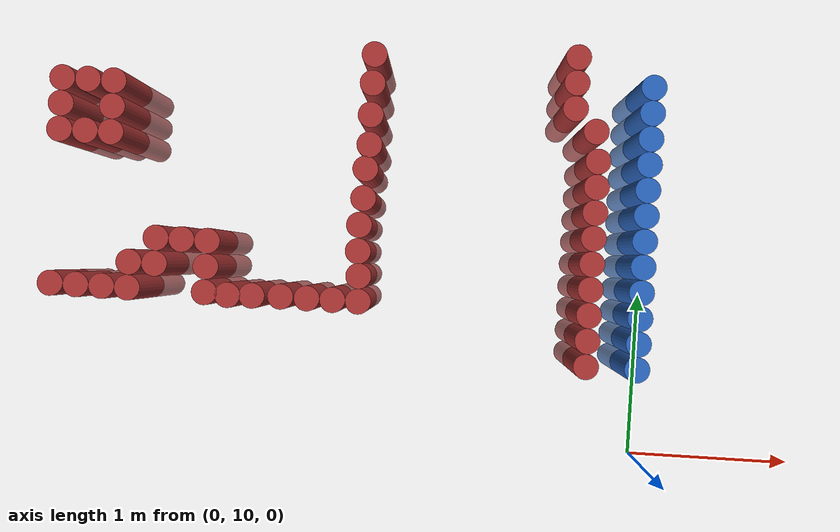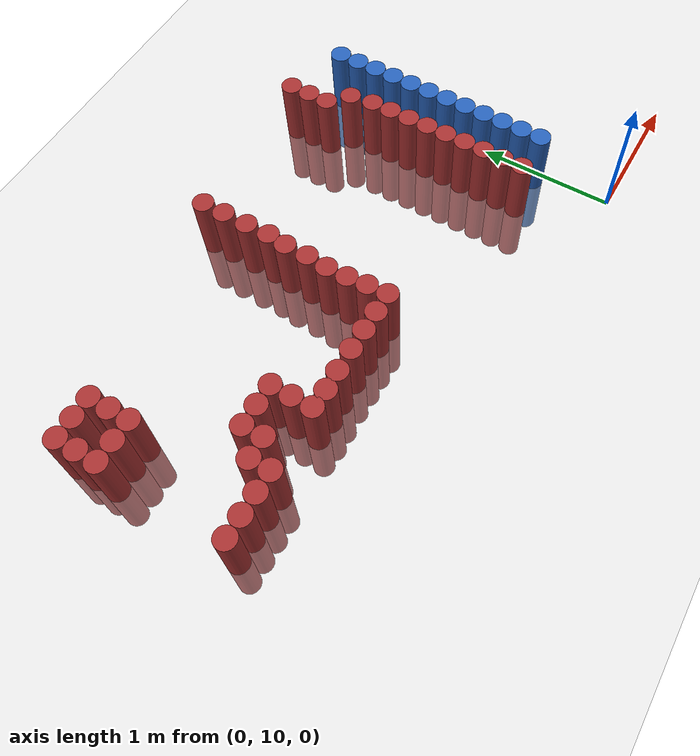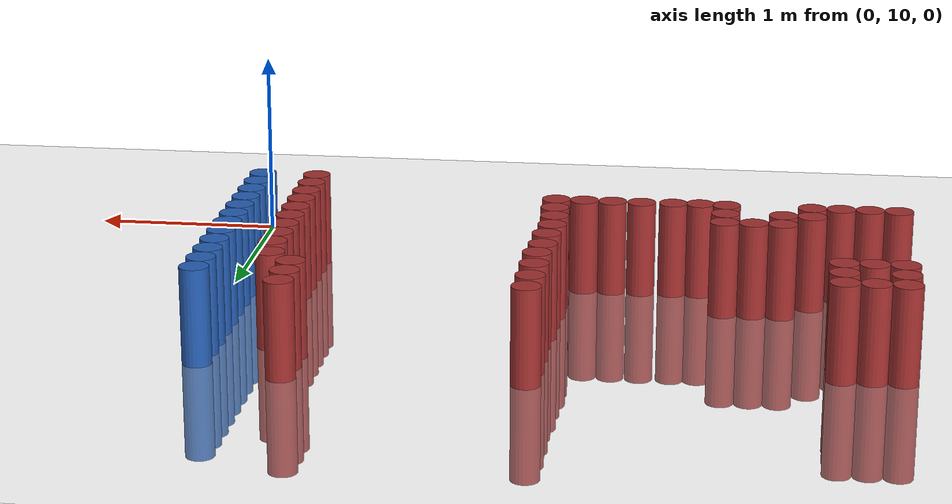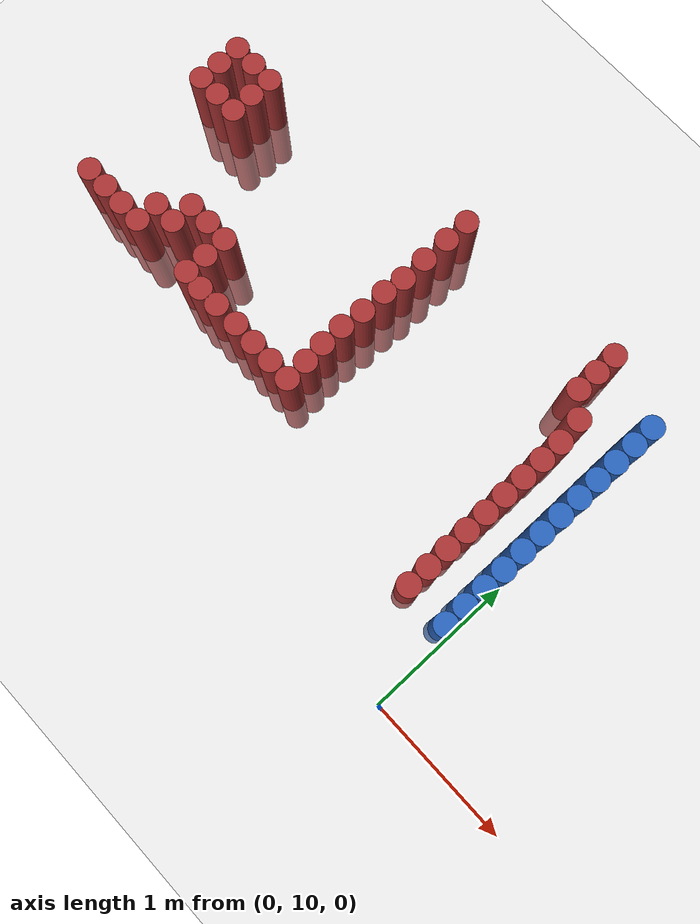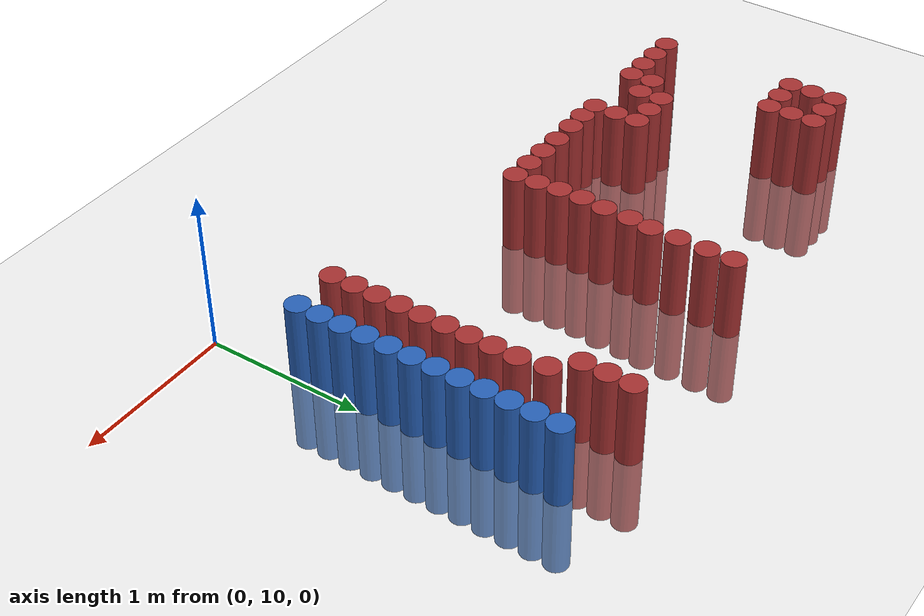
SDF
<sdf version="1.6">
 <world name="default">
  <model name="ground_plane">
   <static>1</static>
   <link name="link">
    <collision name="collision">
     <geometry><plane><normal>0 0 1</normal><size>100 100</size></plane></geometry>
     <surface><friction><ode><mu>100</mu><mu2>50</mu2></ode></friction></surface>
    </collision>
    <visual name="visual">
     <cast_shadows>0</cast_shadows>
     <geometry><plane><normal>0 0 1</normal><size>100 100</size></plane></geometry>
     <material>
      <script><uri>file://media/materials/scripts/gazebo.material</uri><name>Gazebo/Grey</name></script>
     </material>
    </visual>
   </link>
  </model>
  <model name="unit_cylinder_1190">
   <static>1</static>
   <pose>-3.525 10.875 0 0 -0 0</pose>
   <link name="link">
    <inertial>
     <mass>1</mass>
     <inertia><ixx>0.145833</ixx><ixy>0</ixy><ixz>0</ixz><iyy>0.145833</iyy><iyz>0</iyz><izz>0.125</izz></inertia>
    </inertial>
    <collision name="collision">
     <geometry><cylinder><radius>0.075</radius><length>1</length></cylinder></geometry>
    </collision>
    <visual name="visual">
     <geometry><cylinder><radius>0.075</radius><length>1</length></cylinder></geometry>
     <material><ambient>0.648 0.192 0.192 1</ambient><diffuse>0.648 0.192 0.192 1</diffuse></material>
     <material>
      <script><name>Gazebo/Grey</name><uri>file://media/materials/scripts/gazebo.material</uri></script>
     </material>
    </visual>
   </link>
  </model>
  <model name="unit_cylinder_1191">
   <static>1</static>
   <pose>-3.525 11.775 0 0 -0 0</pose>
   <link name="link">
    <inertial>
     <mass>1</mass>
     <inertia><ixx>0.145833</ixx><ixy>0</ixy><ixz>0</ixz><iyy>0.145833</iyy><iyz>0</iyz><izz>0.125</izz></inertia>
    </inertial>
    <collision name="collision">
     <geometry><cylinder><radius>0.075</radius><length>1</length></cylinder></geometry>
    </collision>
    <visual name="visual">
     <geometry><cylinder><radius>0.075</radius><length>1</length></cylinder></geometry>
     <material><ambient>0.648 0.192 0.192 1</ambient><diffuse>0.648 0.192 0.192 1</diffuse></material>
     <material>
      <script><name>Gazebo/Grey</name><uri>file://media/materials/scripts/gazebo.material</uri></script>
     </material>
    </visual>
   </link>
  </model>
  <model name="unit_cylinder_1192">
   <static>1</static>
   <pose>-3.525 11.925 0 0 -0 0</pose>
   <link name="link">
    <inertial>
     <mass>1</mass>
     <inertia><ixx>0.145833</ixx><ixy>0</ixy><ixz>0</ixz><iyy>0.145833</iyy><iyz>0</iyz><izz>0.125</izz></inertia>
    </inertial>
    <collision name="collision">
     <geometry><cylinder><radius>0.075</radius><length>1</length></cylinder></geometry>
    </collision>
    <visual name="visual">
     <geometry><cylinder><radius>0.075</radius><length>1</length></cylinder></geometry>
     <material><ambient>0.648 0.192 0.192 1</ambient><diffuse>0.648 0.192 0.192 1</diffuse></material>
     <material>
      <script><name>Gazebo/Grey</name><uri>file://media/materials/scripts/gazebo.material</uri></script>
     </material>
    </visual>
   </link>
  </model>
  <model name="unit_cylinder_1193">
   <static>1</static>
   <pose>-3.525 12.075 0 0 -0 0</pose>
   <link name="link">
    <inertial>
     <mass>1</mass>
     <inertia><ixx>0.145833</ixx><ixy>0</ixy><ixz>0</ixz><iyy>0.145833</iyy><iyz>0</iyz><izz>0.125</izz></inertia>
    </inertial>
    <collision name="collision">
     <geometry><cylinder><radius>0.075</radius><length>1</length></cylinder></geometry>
    </collision>
    <visual name="visual">
     <geometry><cylinder><radius>0.075</radius><length>1</length></cylinder></geometry>
     <material><ambient>0.648 0.192 0.192 1</ambient><diffuse>0.648 0.192 0.192 1</diffuse></material>
     <material>
      <script><name>Gazebo/Grey</name><uri>file://media/materials/scripts/gazebo.material</uri></script>
     </material>
    </visual>
   </link>
  </model>
  <model name="unit_cylinder_1217">
   <static>1</static>
   <pose>-3.375 10.875 0 0 -0 0</pose>
   <link name="link">
    <inertial>
     <mass>1</mass>
     <inertia><ixx>0.145833</ixx><ixy>0</ixy><ixz>0</ixz><iyy>0.145833</iyy><iyz>0</iyz><izz>0.125</izz></inertia>
    </inertial>
    <collision name="collision">
     <geometry><cylinder><radius>0.075</radius><length>1</length></cylinder></geometry>
    </collision>
    <visual name="visual">
     <geometry><cylinder><radius>0.075</radius><length>1</length></cylinder></geometry>
     <material><ambient>0.648 0.192 0.192 1</ambient><diffuse>0.648 0.192 0.192 1</diffuse></material>
     <material>
      <script><name>Gazebo/Grey</name><uri>file://media/materials/scripts/gazebo.material</uri></script>
     </material>
    </visual>
   </link>
  </model>
  <model name="unit_cylinder_1218">
   <static>1</static>
   <pose>-3.375 11.775 0 0 -0 0</pose>
   <link name="link">
    <inertial>
     <mass>1</mass>
     <inertia><ixx>0.145833</ixx><ixy>0</ixy><ixz>0</ixz><iyy>0.145833</iyy><iyz>0</iyz><izz>0.125</izz></inertia>
    </inertial>
    <collision name="collision">
     <geometry><cylinder><radius>0.075</radius><length>1</length></cylinder></geometry>
    </collision>
    <visual name="visual">
     <geometry><cylinder><radius>0.075</radius><length>1</length></cylinder></geometry>
     <material><ambient>0.648 0.192 0.192 1</ambient><diffuse>0.648 0.192 0.192 1</diffuse></material>
     <material>
      <script><name>Gazebo/Grey</name><uri>file://media/materials/scripts/gazebo.material</uri></script>
     </material>
    </visual>
   </link>
  </model>
  <model name="unit_cylinder_1219">
   <static>1</static>
   <pose>-3.375 12.075 0 0 -0 0</pose>
   <link name="link">
    <inertial>
     <mass>1</mass>
     <inertia><ixx>0.145833</ixx><ixy>0</ixy><ixz>0</ixz><iyy>0.145833</iyy><iyz>0</iyz><izz>0.125</izz></inertia>
    </inertial>
    <collision name="collision">
     <geometry><cylinder><radius>0.075</radius><length>1</length></cylinder></geometry>
    </collision>
    <visual name="visual">
     <geometry><cylinder><radius>0.075</radius><length>1</length></cylinder></geometry>
     <material><ambient>0.648 0.192 0.192 1</ambient><diffuse>0.648 0.192 0.192 1</diffuse></material>
     <material>
      <script><name>Gazebo/Grey</name><uri>file://media/materials/scripts/gazebo.material</uri></script>
     </material>
    </visual>
   </link>
  </model>
  <model name="unit_cylinder_1234">
   <static>1</static>
   <pose>-3.225 10.875 0 0 -0 0</pose>
   <link name="link">
    <inertial>
     <mass>1</mass>
     <inertia><ixx>0.145833</ixx><ixy>0</ixy><ixz>0</ixz><iyy>0.145833</iyy><iyz>0</iyz><izz>0.125</izz></inertia>
    </inertial>
    <collision name="collision">
     <geometry><cylinder><radius>0.075</radius><length>1</length></cylinder></geometry>
    </collision>
    <visual name="visual">
     <geometry><cylinder><radius>0.075</radius><length>1</length></cylinder></geometry>
     <material><ambient>0.648 0.192 0.192 1</ambient><diffuse>0.648 0.192 0.192 1</diffuse></material>
     <material>
      <script><name>Gazebo/Grey</name><uri>file://media/materials/scripts/gazebo.material</uri></script>
     </material>
    </visual>
   </link>
  </model>
  <model name="unit_cylinder_1235">
   <static>1</static>
   <pose>-3.225 11.775 0 0 -0 0</pose>
   <link name="link">
    <inertial>
     <mass>1</mass>
     <inertia><ixx>0.145833</ixx><ixy>0</ixy><ixz>0</ixz><iyy>0.145833</iyy><iyz>0</iyz><izz>0.125</izz></inertia>
    </inertial>
    <collision name="collision">
     <geometry><cylinder><radius>0.075</radius><length>1</length></cylinder></geometry>
    </collision>
    <visual name="visual">
     <geometry><cylinder><radius>0.075</radius><length>1</length></cylinder></geometry>
     <material><ambient>0.648 0.192 0.192 1</ambient><diffuse>0.648 0.192 0.192 1</diffuse></material>
     <material>
      <script><name>Gazebo/Grey</name><uri>file://media/materials/scripts/gazebo.material</uri></script>
     </material>
    </visual>
   </link>
  </model>
  <model name="unit_cylinder_1236">
   <static>1</static>
   <pose>-3.225 11.925 0 0 -0 0</pose>
   <link name="link">
    <inertial>
     <mass>1</mass>
     <inertia><ixx>0.145833</ixx><ixy>0</ixy><ixz>0</ixz><iyy>0.145833</iyy><iyz>0</iyz><izz>0.125</izz></inertia>
    </inertial>
    <collision name="collision">
     <geometry><cylinder><radius>0.075</radius><length>1</length></cylinder></geometry>
    </collision>
    <visual name="visual">
     <geometry><cylinder><radius>0.075</radius><length>1</length></cylinder></geometry>
     <material><ambient>0.648 0.192 0.192 1</ambient><diffuse>0.648 0.192 0.192 1</diffuse></material>
     <material>
      <script><name>Gazebo/Grey</name><uri>file://media/materials/scripts/gazebo.material</uri></script>
     </material>
    </visual>
   </link>
  </model>
  <model name="unit_cylinder_1237">
   <static>1</static>
   <pose>-3.225 12.075 0 0 -0 0</pose>
   <link name="link">
    <inertial>
     <mass>1</mass>
     <inertia><ixx>0.145833</ixx><ixy>0</ixy><ixz>0</ixz><iyy>0.145833</iyy><iyz>0</iyz><izz>0.125</izz></inertia>
    </inertial>
    <collision name="collision">
     <geometry><cylinder><radius>0.075</radius><length>1</length></cylinder></geometry>
    </collision>
    <visual name="visual">
     <geometry><cylinder><radius>0.075</radius><length>1</length></cylinder></geometry>
     <material><ambient>0.648 0.192 0.192 1</ambient><diffuse>0.648 0.192 0.192 1</diffuse></material>
     <material>
      <script><name>Gazebo/Grey</name><uri>file://media/materials/scripts/gazebo.material</uri></script>
     </material>
    </visual>
   </link>
  </model>
  <model name="unit_cylinder_1246">
   <static>1</static>
   <pose>-3.075 10.875 0 0 -0 0</pose>
   <link name="link">
    <inertial>
     <mass>1</mass>
     <inertia><ixx>0.145833</ixx><ixy>0</ixy><ixz>0</ixz><iyy>0.145833</iyy><iyz>0</iyz><izz>0.125</izz></inertia>
    </inertial>
    <collision name="collision">
     <geometry><cylinder><radius>0.075</radius><length>1</length></cylinder></geometry>
    </collision>
    <visual name="visual">
     <geometry><cylinder><radius>0.075</radius><length>1</length></cylinder></geometry>
     <material><ambient>0.648 0.192 0.192 1</ambient><diffuse>0.648 0.192 0.192 1</diffuse></material>
     <material>
      <script><name>Gazebo/Grey</name><uri>file://media/materials/scripts/gazebo.material</uri></script>
     </material>
    </visual>
   </link>
  </model>
  <model name="unit_cylinder_1247">
   <static>1</static>
   <pose>-3.075 11.025 0 0 -0 0</pose>
   <link name="link">
    <inertial>
     <mass>1</mass>
     <inertia><ixx>0.145833</ixx><ixy>0</ixy><ixz>0</ixz><iyy>0.145833</iyy><iyz>0</iyz><izz>0.125</izz></inertia>
    </inertial>
    <collision name="collision">
     <geometry><cylinder><radius>0.075</radius><length>1</length></cylinder></geometry>
    </collision>
    <visual name="visual">
     <geometry><cylinder><radius>0.075</radius><length>1</length></cylinder></geometry>
     <material><ambient>0.648 0.192 0.192 1</ambient><diffuse>0.648 0.192 0.192 1</diffuse></material>
     <material>
      <script><name>Gazebo/Grey</name><uri>file://media/materials/scripts/gazebo.material</uri></script>
     </material>
    </visual>
   </link>
  </model>
  <model name="unit_cylinder_1259">
   <static>1</static>
   <pose>-2.925 11.025 0 0 -0 0</pose>
   <link name="link">
    <inertial>
     <mass>1</mass>
     <inertia><ixx>0.145833</ixx><ixy>0</ixy><ixz>0</ixz><iyy>0.145833</iyy><iyz>0</iyz><izz>0.125</izz></inertia>
    </inertial>
    <collision name="collision">
     <geometry><cylinder><radius>0.075</radius><length>1</length></cylinder></geometry>
    </collision>
    <visual name="visual">
     <geometry><cylinder><radius>0.075</radius><length>1</length></cylinder></geometry>
     <material><ambient>0.648 0.192 0.192 1</ambient><diffuse>0.648 0.192 0.192 1</diffuse></material>
     <material>
      <script><name>Gazebo/Grey</name><uri>file://media/materials/scripts/gazebo.material</uri></script>
     </material>
    </visual>
   </link>
  </model>
  <model name="unit_cylinder_1260">
   <static>1</static>
   <pose>-2.925 11.175 0 0 -0 0</pose>
   <link name="link">
    <inertial>
     <mass>1</mass>
     <inertia><ixx>0.145833</ixx><ixy>0</ixy><ixz>0</ixz><iyy>0.145833</iyy><iyz>0</iyz><izz>0.125</izz></inertia>
    </inertial>
    <collision name="collision">
     <geometry><cylinder><radius>0.075</radius><length>1</length></cylinder></geometry>
    </collision>
    <visual name="visual">
     <geometry><cylinder><radius>0.075</radius><length>1</length></cylinder></geometry>
     <material><ambient>0.648 0.192 0.192 1</ambient><diffuse>0.648 0.192 0.192 1</diffuse></material>
     <material>
      <script><name>Gazebo/Grey</name><uri>file://media/materials/scripts/gazebo.material</uri></script>
     </material>
    </visual>
   </link>
  </model>
  <model name="unit_cylinder_1269">
   <static>1</static>
   <pose>-2.775 11.175 0 0 -0 0</pose>
   <link name="link">
    <inertial>
     <mass>1</mass>
     <inertia><ixx>0.145833</ixx><ixy>0</ixy><ixz>0</ixz><iyy>0.145833</iyy><iyz>0</iyz><izz>0.125</izz></inertia>
    </inertial>
    <collision name="collision">
     <geometry><cylinder><radius>0.075</radius><length>1</length></cylinder></geometry>
    </collision>
    <visual name="visual">
     <geometry><cylinder><radius>0.075</radius><length>1</length></cylinder></geometry>
     <material><ambient>0.648 0.192 0.192 1</ambient><diffuse>0.648 0.192 0.192 1</diffuse></material>
     <material>
      <script><name>Gazebo/Grey</name><uri>file://media/materials/scripts/gazebo.material</uri></script>
     </material>
    </visual>
   </link>
  </model>
  <model name="unit_cylinder_1280">
   <static>1</static>
   <pose>-2.625 10.875 0 0 -0 0</pose>
   <link name="link">
    <inertial>
     <mass>1</mass>
     <inertia><ixx>0.145833</ixx><ixy>0</ixy><ixz>0</ixz><iyy>0.145833</iyy><iyz>0</iyz><izz>0.125</izz></inertia>
    </inertial>
    <collision name="collision">
     <geometry><cylinder><radius>0.075</radius><length>1</length></cylinder></geometry>
    </collision>
    <visual name="visual">
     <geometry><cylinder><radius>0.075</radius><length>1</length></cylinder></geometry>
     <material><ambient>0.648 0.192 0.192 1</ambient><diffuse>0.648 0.192 0.192 1</diffuse></material>
     <material>
      <script><name>Gazebo/Grey</name><uri>file://media/materials/scripts/gazebo.material</uri></script>
     </material>
    </visual>
   </link>
  </model>
  <model name="unit_cylinder_1281">
   <static>1</static>
   <pose>-2.625 11.025 0 0 -0 0</pose>
   <link name="link">
    <inertial>
     <mass>1</mass>
     <inertia><ixx>0.145833</ixx><ixy>0</ixy><ixz>0</ixz><iyy>0.145833</iyy><iyz>0</iyz><izz>0.125</izz></inertia>
    </inertial>
    <collision name="collision">
     <geometry><cylinder><radius>0.075</radius><length>1</length></cylinder></geometry>
    </collision>
    <visual name="visual">
     <geometry><cylinder><radius>0.075</radius><length>1</length></cylinder></geometry>
     <material><ambient>0.648 0.192 0.192 1</ambient><diffuse>0.648 0.192 0.192 1</diffuse></material>
     <material>
      <script><name>Gazebo/Grey</name><uri>file://media/materials/scripts/gazebo.material</uri></script>
     </material>
    </visual>
   </link>
  </model>
  <model name="unit_cylinder_1282">
   <static>1</static>
   <pose>-2.625 11.175 0 0 -0 0</pose>
   <link name="link">
    <inertial>
     <mass>1</mass>
     <inertia><ixx>0.145833</ixx><ixy>0</ixy><ixz>0</ixz><iyy>0.145833</iyy><iyz>0</iyz><izz>0.125</izz></inertia>
    </inertial>
    <collision name="collision">
     <geometry><cylinder><radius>0.075</radius><length>1</length></cylinder></geometry>
    </collision>
    <visual name="visual">
     <geometry><cylinder><radius>0.075</radius><length>1</length></cylinder></geometry>
     <material><ambient>0.648 0.192 0.192 1</ambient><diffuse>0.648 0.192 0.192 1</diffuse></material>
     <material>
      <script><name>Gazebo/Grey</name><uri>file://media/materials/scripts/gazebo.material</uri></script>
     </material>
    </visual>
   </link>
  </model>
  <model name="unit_cylinder_1329">
   <static>1</static>
   <pose>-2.025 10.875 0 0 -0 0</pose>
   <link name="link">
    <inertial>
     <mass>1</mass>
     <inertia><ixx>0.145833</ixx><ixy>0</ixy><ixz>0</ixz><iyy>0.145833</iyy><iyz>0</iyz><izz>0.125</izz></inertia>
    </inertial>
    <collision name="collision">
     <geometry><cylinder><radius>0.075</radius><length>1</length></cylinder></geometry>
    </collision>
    <visual name="visual">
     <geometry><cylinder><radius>0.075</radius><length>1</length></cylinder></geometry>
     <material><ambient>0.648 0.192 0.192 1</ambient><diffuse>0.648 0.192 0.192 1</diffuse></material>
     <material>
      <script><name>Gazebo/Grey</name><uri>file://media/materials/scripts/gazebo.material</uri></script>
     </material>
    </visual>
   </link>
  </model>
  <model name="unit_cylinder_1341">
   <static>1</static>
   <pose>-1.875 10.875 0 0 -0 0</pose>
   <link name="link">
    <inertial>
     <mass>1</mass>
     <inertia><ixx>0.145833</ixx><ixy>0</ixy><ixz>0</ixz><iyy>0.145833</iyy><iyz>0</iyz><izz>0.125</izz></inertia>
    </inertial>
    <collision name="collision">
     <geometry><cylinder><radius>0.075</radius><length>1</length></cylinder></geometry>
    </collision>
    <visual name="visual">
     <geometry><cylinder><radius>0.075</radius><length>1</length></cylinder></geometry>
     <material><ambient>0.648 0.192 0.192 1</ambient><diffuse>0.648 0.192 0.192 1</diffuse></material>
     <material>
      <script><name>Gazebo/Grey</name><uri>file://media/materials/scripts/gazebo.material</uri></script>
     </material>
    </visual>
   </link>
  </model>
  <model name="unit_cylinder_1354">
   <static>1</static>
   <pose>-1.725 10.875 0 0 -0 0</pose>
   <link name="link">
    <inertial>
     <mass>1</mass>
     <inertia><ixx>0.145833</ixx><ixy>0</ixy><ixz>0</ixz><iyy>0.145833</iyy><iyz>0</iyz><izz>0.125</izz></inertia>
    </inertial>
    <collision name="collision">
     <geometry><cylinder><radius>0.075</radius><length>1</length></cylinder></geometry>
    </collision>
    <visual name="visual">
     <geometry><cylinder><radius>0.075</radius><length>1</length></cylinder></geometry>
     <material><ambient>0.648 0.192 0.192 1</ambient><diffuse>0.648 0.192 0.192 1</diffuse></material>
     <material>
      <script><name>Gazebo/Grey</name><uri>file://media/materials/scripts/gazebo.material</uri></script>
     </material>
    </visual>
   </link>
  </model>
  <model name="unit_cylinder_1519">
   <static>1</static>
   <pose>-0.525 12.075 0 0 -0 0</pose>
   <link name="link">
    <inertial>
     <mass>1</mass>
     <inertia><ixx>0.145833</ixx><ixy>0</ixy><ixz>0</ixz><iyy>0.145833</iyy><iyz>0</iyz><izz>0.125</izz></inertia>
    </inertial>
    <collision name="collision">
     <geometry><cylinder><radius>0.075</radius><length>1</length></cylinder></geometry>
    </collision>
    <visual name="visual">
     <geometry><cylinder><radius>0.075</radius><length>1</length></cylinder></geometry>
     <material><ambient>0.648 0.192 0.192 1</ambient><diffuse>0.648 0.192 0.192 1</diffuse></material>
     <material>
      <script><name>Gazebo/Grey</name><uri>file://media/materials/scripts/gazebo.material</uri></script>
     </material>
    </visual>
   </link>
  </model>
  <model name="unit_cylinder_1520">
   <static>1</static>
   <pose>-0.525 12.225 0 0 -0 0</pose>
   <link name="link">
    <inertial>
     <mass>1</mass>
     <inertia><ixx>0.145833</ixx><ixy>0</ixy><ixz>0</ixz><iyy>0.145833</iyy><iyz>0</iyz><izz>0.125</izz></inertia>
    </inertial>
    <collision name="collision">
     <geometry><cylinder><radius>0.075</radius><length>1</length></cylinder></geometry>
    </collision>
    <visual name="visual">
     <geometry><cylinder><radius>0.075</radius><length>1</length></cylinder></geometry>
     <material><ambient>0.648 0.192 0.192 1</ambient><diffuse>0.648 0.192 0.192 1</diffuse></material>
     <material>
      <script><name>Gazebo/Grey</name><uri>file://media/materials/scripts/gazebo.material</uri></script>
     </material>
    </visual>
   </link>
  </model>
  <model name="unit_cylinder_1521">
   <static>1</static>
   <pose>-0.525 12.375 0 0 -0 0</pose>
   <link name="link">
    <inertial>
     <mass>1</mass>
     <inertia><ixx>0.145833</ixx><ixy>0</ixy><ixz>0</ixz><iyy>0.145833</iyy><iyz>0</iyz><izz>0.125</izz></inertia>
    </inertial>
    <collision name="collision">
     <geometry><cylinder><radius>0.075</radius><length>1</length></cylinder></geometry>
    </collision>
    <visual name="visual">
     <geometry><cylinder><radius>0.075</radius><length>1</length></cylinder></geometry>
     <material><ambient>0.648 0.192 0.192 1</ambient><diffuse>0.648 0.192 0.192 1</diffuse></material>
     <material>
      <script><name>Gazebo/Grey</name><uri>file://media/materials/scripts/gazebo.material</uri></script>
     </material>
    </visual>
   </link>
  </model>
  <model name="unit_cylinder_1539">
   <static>1</static>
   <pose>-0.375 10.575 0 0 -0 0</pose>
   <link name="link">
    <inertial>
     <mass>1</mass>
     <inertia><ixx>0.145833</ixx><ixy>0</ixy><ixz>0</ixz><iyy>0.145833</iyy><iyz>0</iyz><izz>0.125</izz></inertia>
    </inertial>
    <collision name="collision">
     <geometry><cylinder><radius>0.075</radius><length>1</length></cylinder></geometry>
    </collision>
    <visual name="visual">
     <geometry><cylinder><radius>0.075</radius><length>1</length></cylinder></geometry>
     <material><ambient>0.648 0.192 0.192 1</ambient><diffuse>0.648 0.192 0.192 1</diffuse></material>
     <material>
      <script><name>Gazebo/Grey</name><uri>file://media/materials/scripts/gazebo.material</uri></script>
     </material>
    </visual>
   </link>
  </model>
  <model name="unit_cylinder_1540">
   <static>1</static>
   <pose>-0.375 10.725 0 0 -0 0</pose>
   <link name="link">
    <inertial>
     <mass>1</mass>
     <inertia><ixx>0.145833</ixx><ixy>0</ixy><ixz>0</ixz><iyy>0.145833</iyy><iyz>0</iyz><izz>0.125</izz></inertia>
    </inertial>
    <collision name="collision">
     <geometry><cylinder><radius>0.075</radius><length>1</length></cylinder></geometry>
    </collision>
    <visual name="visual">
     <geometry><cylinder><radius>0.075</radius><length>1</length></cylinder></geometry>
     <material><ambient>0.648 0.192 0.192 1</ambient><diffuse>0.648 0.192 0.192 1</diffuse></material>
     <material>
      <script><name>Gazebo/Grey</name><uri>file://media/materials/scripts/gazebo.material</uri></script>
     </material>
    </visual>
   </link>
  </model>
  <model name="unit_cylinder_1541">
   <static>1</static>
   <pose>-0.375 10.875 0 0 -0 0</pose>
   <link name="link">
    <inertial>
     <mass>1</mass>
     <inertia><ixx>0.145833</ixx><ixy>0</ixy><ixz>0</ixz><iyy>0.145833</iyy><iyz>0</iyz><izz>0.125</izz></inertia>
    </inertial>
    <collision name="collision">
     <geometry><cylinder><radius>0.075</radius><length>1</length></cylinder></geometry>
    </collision>
    <visual name="visual">
     <geometry><cylinder><radius>0.075</radius><length>1</length></cylinder></geometry>
     <material><ambient>0.648 0.192 0.192 1</ambient><diffuse>0.648 0.192 0.192 1</diffuse></material>
     <material>
      <script><name>Gazebo/Grey</name><uri>file://media/materials/scripts/gazebo.material</uri></script>
     </material>
    </visual>
   </link>
  </model>
  <model name="unit_cylinder_1542">
   <static>1</static>
   <pose>-0.375 11.025 0 0 -0 0</pose>
   <link name="link">
    <inertial>
     <mass>1</mass>
     <inertia><ixx>0.145833</ixx><ixy>0</ixy><ixz>0</ixz><iyy>0.145833</iyy><iyz>0</iyz><izz>0.125</izz></inertia>
    </inertial>
    <collision name="collision">
     <geometry><cylinder><radius>0.075</radius><length>1</length></cylinder></geometry>
    </collision>
    <visual name="visual">
     <geometry><cylinder><radius>0.075</radius><length>1</length></cylinder></geometry>
     <material><ambient>0.648 0.192 0.192 1</ambient><diffuse>0.648 0.192 0.192 1</diffuse></material>
     <material>
      <script><name>Gazebo/Grey</name><uri>file://media/materials/scripts/gazebo.material</uri></script>
     </material>
    </visual>
   </link>
  </model>
  <model name="unit_cylinder_1543">
   <static>1</static>
   <pose>-0.375 11.175 0 0 -0 0</pose>
   <link name="link">
    <inertial>
     <mass>1</mass>
     <inertia><ixx>0.145833</ixx><ixy>0</ixy><ixz>0</ixz><iyy>0.145833</iyy><iyz>0</iyz><izz>0.125</izz></inertia>
    </inertial>
    <collision name="collision">
     <geometry><cylinder><radius>0.075</radius><length>1</length></cylinder></geometry>
    </collision>
    <visual name="visual">
     <geometry><cylinder><radius>0.075</radius><length>1</length></cylinder></geometry>
     <material><ambient>0.648 0.192 0.192 1</ambient><diffuse>0.648 0.192 0.192 1</diffuse></material>
     <material>
      <script><name>Gazebo/Grey</name><uri>file://media/materials/scripts/gazebo.material</uri></script>
     </material>
    </visual>
   </link>
  </model>
  <model name="unit_cylinder_1544">
   <static>1</static>
   <pose>-0.375 11.325 0 0 -0 0</pose>
   <link name="link">
    <inertial>
     <mass>1</mass>
     <inertia><ixx>0.145833</ixx><ixy>0</ixy><ixz>0</ixz><iyy>0.145833</iyy><iyz>0</iyz><izz>0.125</izz></inertia>
    </inertial>
    <collision name="collision">
     <geometry><cylinder><radius>0.075</radius><length>1</length></cylinder></geometry>
    </collision>
    <visual name="visual">
     <geometry><cylinder><radius>0.075</radius><length>1</length></cylinder></geometry>
     <material><ambient>0.648 0.192 0.192 1</ambient><diffuse>0.648 0.192 0.192 1</diffuse></material>
     <material>
      <script><name>Gazebo/Grey</name><uri>file://media/materials/scripts/gazebo.material</uri></script>
     </material>
    </visual>
   </link>
  </model>
  <model name="unit_cylinder_1545">
   <static>1</static>
   <pose>-0.375 11.475 0 0 -0 0</pose>
   <link name="link">
    <inertial>
     <mass>1</mass>
     <inertia><ixx>0.145833</ixx><ixy>0</ixy><ixz>0</ixz><iyy>0.145833</iyy><iyz>0</iyz><izz>0.125</izz></inertia>
    </inertial>
    <collision name="collision">
     <geometry><cylinder><radius>0.075</radius><length>1</length></cylinder></geometry>
    </collision>
    <visual name="visual">
     <geometry><cylinder><radius>0.075</radius><length>1</length></cylinder></geometry>
     <material><ambient>0.648 0.192 0.192 1</ambient><diffuse>0.648 0.192 0.192 1</diffuse></material>
     <material>
      <script><name>Gazebo/Grey</name><uri>file://media/materials/scripts/gazebo.material</uri></script>
     </material>
    </visual>
   </link>
  </model>
  <model name="unit_cylinder_1546">
   <static>1</static>
   <pose>-0.375 11.625 0 0 -0 0</pose>
   <link name="link">
    <inertial>
     <mass>1</mass>
     <inertia><ixx>0.145833</ixx><ixy>0</ixy><ixz>0</ixz><iyy>0.145833</iyy><iyz>0</iyz><izz>0.125</izz></inertia>
    </inertial>
    <collision name="collision">
     <geometry><cylinder><radius>0.075</radius><length>1</length></cylinder></geometry>
    </collision>
    <visual name="visual">
     <geometry><cylinder><radius>0.075</radius><length>1</length></cylinder></geometry>
     <material><ambient>0.648 0.192 0.192 1</ambient><diffuse>0.648 0.192 0.192 1</diffuse></material>
     <material>
      <script><name>Gazebo/Grey</name><uri>file://media/materials/scripts/gazebo.material</uri></script>
     </material>
    </visual>
   </link>
  </model>
  <model name="unit_cylinder_1547">
   <static>1</static>
   <pose>-0.375 11.775 0 0 -0 0</pose>
   <link name="link">
    <inertial>
     <mass>1</mass>
     <inertia><ixx>0.145833</ixx><ixy>0</ixy><ixz>0</ixz><iyy>0.145833</iyy><iyz>0</iyz><izz>0.125</izz></inertia>
    </inertial>
    <collision name="collision">
     <geometry><cylinder><radius>0.075</radius><length>1</length></cylinder></geometry>
    </collision>
    <visual name="visual">
     <geometry><cylinder><radius>0.075</radius><length>1</length></cylinder></geometry>
     <material><ambient>0.648 0.192 0.192 1</ambient><diffuse>0.648 0.192 0.192 1</diffuse></material>
     <material>
      <script><name>Gazebo/Grey</name><uri>file://media/materials/scripts/gazebo.material</uri></script>
     </material>
    </visual>
   </link>
  </model>
  <model name="unit_cylinder_1590">
   <static>1</static>
   <pose>-0.075 10.575 0 0 -0 0</pose>
   <link name="link">
    <inertial>
     <mass>1</mass>
     <inertia><ixx>0.145833</ixx><ixy>0</ixy><ixz>0</ixz><iyy>0.145833</iyy><iyz>0</iyz><izz>0.125</izz></inertia>
    </inertial>
    <collision name="collision">
     <geometry><cylinder><radius>0.075</radius><length>1</length></cylinder></geometry>
    </collision>
    <visual name="visual">
     <geometry><cylinder><radius>0.075</radius><length>1</length></cylinder></geometry>
     <material><ambient>0.152 0.379 0.72 1</ambient><diffuse>0.152 0.379 0.72 1</diffuse></material>
     <material>
      <script><name>Gazebo/Grey</name><uri>file://media/materials/scripts/gazebo.material</uri></script>
     </material>
    </visual>
   </link>
  </model>
  <model name="unit_cylinder_1591">
   <static>1</static>
   <pose>-0.075 10.725 0 0 -0 0</pose>
   <link name="link">
    <inertial>
     <mass>1</mass>
     <inertia><ixx>0.145833</ixx><ixy>0</ixy><ixz>0</ixz><iyy>0.145833</iyy><iyz>0</iyz><izz>0.125</izz></inertia>
    </inertial>
    <collision name="collision">
     <geometry><cylinder><radius>0.075</radius><length>1</length></cylinder></geometry>
    </collision>
    <visual name="visual">
     <geometry><cylinder><radius>0.075</radius><length>1</length></cylinder></geometry>
     <material><ambient>0.152 0.379 0.72 1</ambient><diffuse>0.152 0.379 0.72 1</diffuse></material>
     <material>
      <script><name>Gazebo/Grey</name><uri>file://media/materials/scripts/gazebo.material</uri></script>
     </material>
    </visual>
   </link>
  </model>
  <model name="unit_cylinder_1592">
   <static>1</static>
   <pose>-0.075 10.875 0 0 -0 0</pose>
   <link name="link">
    <inertial>
     <mass>1</mass>
     <inertia><ixx>0.145833</ixx><ixy>0</ixy><ixz>0</ixz><iyy>0.145833</iyy><iyz>0</iyz><izz>0.125</izz></inertia>
    </inertial>
    <collision name="collision">
     <geometry><cylinder><radius>0.075</radius><length>1</length></cylinder></geometry>
    </collision>
    <visual name="visual">
     <geometry><cylinder><radius>0.075</radius><length>1</length></cylinder></geometry>
     <material><ambient>0.152 0.379 0.72 1</ambient><diffuse>0.152 0.379 0.72 1</diffuse></material>
     <material>
      <script><name>Gazebo/Grey</name><uri>file://media/materials/scripts/gazebo.material</uri></script>
     </material>
    </visual>
   </link>
  </model>
  <model name="unit_cylinder_1593">
   <static>1</static>
   <pose>-0.075 11.025 0 0 -0 0</pose>
   <link name="link">
    <inertial>
     <mass>1</mass>
     <inertia><ixx>0.145833</ixx><ixy>0</ixy><ixz>0</ixz><iyy>0.145833</iyy><iyz>0</iyz><izz>0.125</izz></inertia>
    </inertial>
    <collision name="collision">
     <geometry><cylinder><radius>0.075</radius><length>1</length></cylinder></geometry>
    </collision>
    <visual name="visual">
     <geometry><cylinder><radius>0.075</radius><length>1</length></cylinder></geometry>
     <material><ambient>0.152 0.379 0.72 1</ambient><diffuse>0.152 0.379 0.72 1</diffuse></material>
     <material>
      <script><name>Gazebo/Grey</name><uri>file://media/materials/scripts/gazebo.material</uri></script>
     </material>
    </visual>
   </link>
  </model>
  <model name="unit_cylinder_1594">
   <static>1</static>
   <pose>-0.075 11.175 0 0 -0 0</pose>
   <link name="link">
    <inertial>
     <mass>1</mass>
     <inertia><ixx>0.145833</ixx><ixy>0</ixy><ixz>0</ixz><iyy>0.145833</iyy><iyz>0</iyz><izz>0.125</izz></inertia>
    </inertial>
    <collision name="collision">
     <geometry><cylinder><radius>0.075</radius><length>1</length></cylinder></geometry>
    </collision>
    <visual name="visual">
     <geometry><cylinder><radius>0.075</radius><length>1</length></cylinder></geometry>
     <material><ambient>0.152 0.379 0.72 1</ambient><diffuse>0.152 0.379 0.72 1</diffuse></material>
     <material>
      <script><name>Gazebo/Grey</name><uri>file://media/materials/scripts/gazebo.material</uri></script>
     </material>
    </visual>
   </link>
  </model>
  <model name="unit_cylinder_1595">
   <static>1</static>
   <pose>-0.075 11.325 0 0 -0 0</pose>
   <link name="link">
    <inertial>
     <mass>1</mass>
     <inertia><ixx>0.145833</ixx><ixy>0</ixy><ixz>0</ixz><iyy>0.145833</iyy><iyz>0</iyz><izz>0.125</izz></inertia>
    </inertial>
    <collision name="collision">
     <geometry><cylinder><radius>0.075</radius><length>1</length></cylinder></geometry>
    </collision>
    <visual name="visual">
     <geometry><cylinder><radius>0.075</radius><length>1</length></cylinder></geometry>
     <material><ambient>0.152 0.379 0.72 1</ambient><diffuse>0.152 0.379 0.72 1</diffuse></material>
     <material>
      <script><name>Gazebo/Grey</name><uri>file://media/materials/scripts/gazebo.material</uri></script>
     </material>
    </visual>
   </link>
  </model>
  <model name="unit_cylinder_1596">
   <static>1</static>
   <pose>-0.075 11.475 0 0 -0 0</pose>
   <link name="link">
    <inertial>
     <mass>1</mass>
     <inertia><ixx>0.145833</ixx><ixy>0</ixy><ixz>0</ixz><iyy>0.145833</iyy><iyz>0</iyz><izz>0.125</izz></inertia>
    </inertial>
    <collision name="collision">
     <geometry><cylinder><radius>0.075</radius><length>1</length></cylinder></geometry>
    </collision>
    <visual name="visual">
     <geometry><cylinder><radius>0.075</radius><length>1</length></cylinder></geometry>
     <material><ambient>0.152 0.379 0.72 1</ambient><diffuse>0.152 0.379 0.72 1</diffuse></material>
     <material>
      <script><name>Gazebo/Grey</name><uri>file://media/materials/scripts/gazebo.material</uri></script>
     </material>
    </visual>
   </link>
  </model>
  <model name="unit_cylinder_1597">
   <static>1</static>
   <pose>-0.075 11.625 0 0 -0 0</pose>
   <link name="link">
    <inertial>
     <mass>1</mass>
     <inertia><ixx>0.145833</ixx><ixy>0</ixy><ixz>0</ixz><iyy>0.145833</iyy><iyz>0</iyz><izz>0.125</izz></inertia>
    </inertial>
    <collision name="collision">
     <geometry><cylinder><radius>0.075</radius><length>1</length></cylinder></geometry>
    </collision>
    <visual name="visual">
     <geometry><cylinder><radius>0.075</radius><length>1</length></cylinder></geometry>
     <material><ambient>0.152 0.379 0.72 1</ambient><diffuse>0.152 0.379 0.72 1</diffuse></material>
     <material>
      <script><name>Gazebo/Grey</name><uri>file://media/materials/scripts/gazebo.material</uri></script>
     </material>
    </visual>
   </link>
  </model>
  <model name="unit_cylinder_1598">
   <static>1</static>
   <pose>-0.075 11.775 0 0 -0 0</pose>
   <link name="link">
    <inertial>
     <mass>1</mass>
     <inertia><ixx>0.145833</ixx><ixy>0</ixy><ixz>0</ixz><iyy>0.145833</iyy><iyz>0</iyz><izz>0.125</izz></inertia>
    </inertial>
    <collision name="collision">
     <geometry><cylinder><radius>0.075</radius><length>1</length></cylinder></geometry>
    </collision>
    <visual name="visual">
     <geometry><cylinder><radius>0.075</radius><length>1</length></cylinder></geometry>
     <material><ambient>0.152 0.379 0.72 1</ambient><diffuse>0.152 0.379 0.72 1</diffuse></material>
     <material>
      <script><name>Gazebo/Grey</name><uri>file://media/materials/scripts/gazebo.material</uri></script>
     </material>
    </visual>
   </link>
  </model>
  <model name="unit_cylinder_1599">
   <static>1</static>
   <pose>-0.075 11.925 0 0 -0 0</pose>
   <link name="link">
    <inertial>
     <mass>1</mass>
     <inertia><ixx>0.145833</ixx><ixy>0</ixy><ixz>0</ixz><iyy>0.145833</iyy><iyz>0</iyz><izz>0.125</izz></inertia>
    </inertial>
    <collision name="collision">
     <geometry><cylinder><radius>0.075</radius><length>1</length></cylinder></geometry>
    </collision>
    <visual name="visual">
     <geometry><cylinder><radius>0.075</radius><length>1</length></cylinder></geometry>
     <material><ambient>0.152 0.379 0.72 1</ambient><diffuse>0.152 0.379 0.72 1</diffuse></material>
     <material>
      <script><name>Gazebo/Grey</name><uri>file://media/materials/scripts/gazebo.material</uri></script>
     </material>
    </visual>
   </link>
  </model>
  <model name="unit_cylinder_1600">
   <static>1</static>
   <pose>-0.075 12.075 0 0 -0 0</pose>
   <link name="link">
    <inertial>
     <mass>1</mass>
     <inertia><ixx>0.145833</ixx><ixy>0</ixy><ixz>0</ixz><iyy>0.145833</iyy><iyz>0</iyz><izz>0.125</izz></inertia>
    </inertial>
    <collision name="collision">
     <geometry><cylinder><radius>0.075</radius><length>1</length></cylinder></geometry>
    </collision>
    <visual name="visual">
     <geometry><cylinder><radius>0.075</radius><length>1</length></cylinder></geometry>
     <material><ambient>0.152 0.379 0.72 1</ambient><diffuse>0.152 0.379 0.72 1</diffuse></material>
     <material>
      <script><name>Gazebo/Grey</name><uri>file://media/materials/scripts/gazebo.material</uri></script>
     </material>
    </visual>
   </link>
  </model>
  <model name="unit_cylinder_1601">
   <static>1</static>
   <pose>-0.075 12.225 0 0 -0 0</pose>
   <link name="link">
    <inertial>
     <mass>1</mass>
     <inertia><ixx>0.145833</ixx><ixy>0</ixy><ixz>0</ixz><iyy>0.145833</iyy><iyz>0</iyz><izz>0.125</izz></inertia>
    </inertial>
    <collision name="collision">
     <geometry><cylinder><radius>0.075</radius><length>1</length></cylinder></geometry>
    </collision>
    <visual name="visual">
     <geometry><cylinder><radius>0.075</radius><length>1</length></cylinder></geometry>
     <material><ambient>0.152 0.379 0.72 1</ambient><diffuse>0.152 0.379 0.72 1</diffuse></material>
     <material>
      <script><name>Gazebo/Grey</name><uri>file://media/materials/scripts/gazebo.material</uri></script>
     </material>
    </visual>
   </link>
  </model>
  <model name="unit_cylinder_1287_clone">
   <static>1</static>
   <pose>-2.17901 10.8761 0 0 -0 0</pose>
   <link name="link">
    <inertial>
     <mass>1</mass>
     <inertia><ixx>0.145833</ixx><ixy>0</ixy><ixz>0</ixz><iyy>0.145833</iyy><iyz>0</iyz><izz>0.125</izz></inertia>
    </inertial>
    <collision name="collision">
     <geometry><cylinder><radius>0.075</radius><length>1</length></cylinder></geometry>
    </collision>
    <visual name="visual">
     <geometry><cylinder><radius>0.075</radius><length>1</length></cylinder></geometry>
     <material><ambient>0.648 0.192 0.192 1</ambient><diffuse>0.648 0.192 0.192 1</diffuse></material>
     <material>
      <script><name>Gazebo/Grey</name><uri>file://media/materials/scripts/gazebo.material</uri></script>
     </material>
    </visual>
   </link>
  </model>
  <model name="unit_cylinder_1287_clone_0_clone">
   <static>1</static>
   <pose>-2.48913 10.8666 0 0 -0 0</pose>
   <link name="link">
    <inertial>
     <mass>1</mass>
     <inertia><ixx>0.145833</ixx><ixy>0</ixy><ixz>0</ixz><iyy>0.145833</iyy><iyz>0</iyz><izz>0.125</izz></inertia>
    </inertial>
    <collision name="collision">
     <geometry><cylinder><radius>0.075</radius><length>1</length></cylinder></geometry>
    </collision>
    <visual name="visual">
     <geometry><cylinder><radius>0.075</radius><length>1</length></cylinder></geometry>
     <material><ambient>0.648 0.192 0.192 1</ambient><diffuse>0.648 0.192 0.192 1</diffuse></material>
     <material>
      <script><name>Gazebo/Grey</name><uri>file://media/materials/scripts/gazebo.material</uri></script>
     </material>
    </visual>
   </link>
  </model>
  <model name="unit_cylinder_1355_clone_1">
   <static>1</static>
   <pose>-1.71547 12.3193 0 0 -0 0</pose>
   <link name="link">
    <inertial>
     <mass>1</mass>
     <inertia><ixx>0.145833</ixx><ixy>0</ixy><ixz>0</ixz><iyy>0.145833</iyy><iyz>0</iyz><izz>0.125</izz></inertia>
    </inertial>
    <collision name="collision">
     <geometry><cylinder><radius>0.075</radius><length>1</length></cylinder></geometry>
    </collision>
    <visual name="visual">
     <geometry><cylinder><radius>0.075</radius><length>1</length></cylinder></geometry>
     <material><ambient>0.648 0.192 0.192 1</ambient><diffuse>0.648 0.192 0.192 1</diffuse></material>
     <material>
      <script><name>Gazebo/Grey</name><uri>file://media/materials/scripts/gazebo.material</uri></script>
     </material>
    </visual>
   </link>
  </model>
  <model name="unit_cylinder_1355_clone_2">
   <static>1</static>
   <pose>-1.71664 12.152 0 0 -0 0</pose>
   <link name="link">
    <inertial>
     <mass>1</mass>
     <inertia><ixx>0.145833</ixx><ixy>0</ixy><ixz>0</ixz><iyy>0.145833</iyy><iyz>0</iyz><izz>0.125</izz></inertia>
    </inertial>
    <collision name="collision">
     <geometry><cylinder><radius>0.075</radius><length>1</length></cylinder></geometry>
    </collision>
    <visual name="visual">
     <geometry><cylinder><radius>0.075</radius><length>1</length></cylinder></geometry>
     <material><ambient>0.648 0.192 0.192 1</ambient><diffuse>0.648 0.192 0.192 1</diffuse></material>
     <material>
      <script><name>Gazebo/Grey</name><uri>file://media/materials/scripts/gazebo.material</uri></script>
     </material>
    </visual>
   </link>
  </model>
  <model name="unit_cylinder_1355_clone_3">
   <static>1</static>
   <pose>-1.71685 11.9669 0 0 -0 0</pose>
   <link name="link">
    <inertial>
     <mass>1</mass>
     <inertia><ixx>0.145833</ixx><ixy>0</ixy><ixz>0</ixz><iyy>0.145833</iyy><iyz>0</iyz><izz>0.125</izz></inertia>
    </inertial>
    <collision name="collision">
     <geometry><cylinder><radius>0.075</radius><length>1</length></cylinder></geometry>
    </collision>
    <visual name="visual">
     <geometry><cylinder><radius>0.075</radius><length>1</length></cylinder></geometry>
     <material><ambient>0.648 0.192 0.192 1</ambient><diffuse>0.648 0.192 0.192 1</diffuse></material>
     <material>
      <script><name>Gazebo/Grey</name><uri>file://media/materials/scripts/gazebo.material</uri></script>
     </material>
    </visual>
   </link>
  </model>
  <model name="unit_cylinder_1355_clone_3_clone">
   <static>1</static>
   <pose>-1.71403 11.793 0 0 -0 0</pose>
   <link name="link">
    <inertial>
     <mass>1</mass>
     <inertia><ixx>0.145833</ixx><ixy>0</ixy><ixz>0</ixz><iyy>0.145833</iyy><iyz>0</iyz><izz>0.125</izz></inertia>
    </inertial>
    <collision name="collision">
     <geometry><cylinder><radius>0.075</radius><length>1</length></cylinder></geometry>
    </collision>
    <visual name="visual">
     <geometry><cylinder><radius>0.075</radius><length>1</length></cylinder></geometry>
     <material><ambient>0.648 0.192 0.192 1</ambient><diffuse>0.648 0.192 0.192 1</diffuse></material>
     <material>
      <script><name>Gazebo/Grey</name><uri>file://media/materials/scripts/gazebo.material</uri></script>
     </material>
    </visual>
   </link>
  </model>
  <model name="unit_cylinder_1547_clone">
   <static>1</static>
   <pose>-0.396229 11.9481 0 0 -0 0</pose>
   <link name="link">
    <inertial>
     <mass>1</mass>
     <inertia><ixx>0.145833</ixx><ixy>0</ixy><ixz>0</ixz><iyy>0.145833</iyy><iyz>0</iyz><izz>0.125</izz></inertia>
    </inertial>
    <collision name="collision">
     <geometry><cylinder><radius>0.075</radius><length>1</length></cylinder></geometry>
    </collision>
    <visual name="visual">
     <geometry><cylinder><radius>0.075</radius><length>1</length></cylinder></geometry>
     <material><ambient>0.648 0.192 0.192 1</ambient><diffuse>0.648 0.192 0.192 1</diffuse></material>
     <material>
      <script><name>Gazebo/Grey</name><uri>file://media/materials/scripts/gazebo.material</uri></script>
     </material>
    </visual>
   </link>
  </model>
  <model name="unit_cylinder_1315_clone_clone_2">
   <static>1</static>
   <pose>-2.34645 10.8718 0 0 -0 0</pose>
   <link name="link">
    <inertial>
     <mass>1</mass>
     <inertia><ixx>0.145833</ixx><ixy>0</ixy><ixz>0</ixz><iyy>0.145833</iyy><iyz>0</iyz><izz>0.125</izz></inertia>
    </inertial>
    <collision name="collision">
     <geometry><cylinder><radius>0.075</radius><length>1</length></cylinder></geometry>
    </collision>
    <visual name="visual">
     <geometry><cylinder><radius>0.075</radius><length>1</length></cylinder></geometry>
     <material><ambient>0.648 0.192 0.192 1</ambient><diffuse>0.648 0.192 0.192 1</diffuse></material>
     <material>
      <script><name>Gazebo/Grey</name><uri>file://media/materials/scripts/gazebo.material</uri></script>
     </material>
    </visual>
   </link>
  </model>
  <model name="unit_cylinder_1355_clone_3_clone_clone">
   <static>1</static>
   <pose>-1.72887 11.6509 0 0 -0 0</pose>
   <link name="link">
    <inertial>
     <mass>1</mass>
     <inertia><ixx>0.145833</ixx><ixy>0</ixy><ixz>0</ixz><iyy>0.145833</iyy><iyz>0</iyz><izz>0.125</izz></inertia>
    </inertial>
    <collision name="collision">
     <geometry><cylinder><radius>0.075</radius><length>1</length></cylinder></geometry>
    </collision>
    <visual name="visual">
     <geometry><cylinder><radius>0.075</radius><length>1</length></cylinder></geometry>
     <material><ambient>0.648 0.192 0.192 1</ambient><diffuse>0.648 0.192 0.192 1</diffuse></material>
     <material>
      <script><name>Gazebo/Grey</name><uri>file://media/materials/scripts/gazebo.material</uri></script>
     </material>
    </visual>
   </link>
  </model>
  <model name="unit_cylinder_1355_clone_3_clone_clone_0">
   <static>1</static>
   <pose>-1.73175 11.0237 0 0 -0 0</pose>
   <link name="link">
    <inertial>
     <mass>1</mass>
     <inertia><ixx>0.145833</ixx><ixy>0</ixy><ixz>0</ixz><iyy>0.145833</iyy><iyz>0</iyz><izz>0.125</izz></inertia>
    </inertial>
    <collision name="collision">
     <geometry><cylinder><radius>0.075</radius><length>1</length></cylinder></geometry>
    </collision>
    <visual name="visual">
     <geometry><cylinder><radius>0.075</radius><length>1</length></cylinder></geometry>
     <material><ambient>0.648 0.192 0.192 1</ambient><diffuse>0.648 0.192 0.192 1</diffuse></material>
     <material>
      <script><name>Gazebo/Grey</name><uri>file://media/materials/scripts/gazebo.material</uri></script>
     </material>
    </visual>
   </link>
  </model>
  <model name="unit_cylinder_1355_clone_3_clone_clone_1">
   <static>1</static>
   <pose>-1.74338 11.1685 0 0 -0 0</pose>
   <link name="link">
    <inertial>
     <mass>1</mass>
     <inertia><ixx>0.145833</ixx><ixy>0</ixy><ixz>0</ixz><iyy>0.145833</iyy><iyz>0</iyz><izz>0.125</izz></inertia>
    </inertial>
    <collision name="collision">
     <geometry><cylinder><radius>0.075</radius><length>1</length></cylinder></geometry>
    </collision>
    <visual name="visual">
     <geometry><cylinder><radius>0.075</radius><length>1</length></cylinder></geometry>
     <material><ambient>0.648 0.192 0.192 1</ambient><diffuse>0.648 0.192 0.192 1</diffuse></material>
     <material>
      <script><name>Gazebo/Grey</name><uri>file://media/materials/scripts/gazebo.material</uri></script>
     </material>
    </visual>
   </link>
  </model>
  <model name="unit_cylinder_1355_clone_3_clone_clone_2">
   <static>1</static>
   <pose>-1.74534 11.3215 0 0 -0 0</pose>
   <link name="link">
    <inertial>
     <mass>1</mass>
     <inertia><ixx>0.145833</ixx><ixy>0</ixy><ixz>0</ixz><iyy>0.145833</iyy><iyz>0</iyz><izz>0.125</izz></inertia>
    </inertial>
    <collision name="collision">
     <geometry><cylinder><radius>0.075</radius><length>1</length></cylinder></geometry>
    </collision>
    <visual name="visual">
     <geometry><cylinder><radius>0.075</radius><length>1</length></cylinder></geometry>
     <material><ambient>0.648 0.192 0.192 1</ambient><diffuse>0.648 0.192 0.192 1</diffuse></material>
     <material>
      <script><name>Gazebo/Grey</name><uri>file://media/materials/scripts/gazebo.material</uri></script>
     </material>
    </visual>
   </link>
  </model>
  <model name="unit_cylinder_1355_clone_3_clone_clone_3">
   <static>1</static>
   <pose>-1.73085 11.4785 0 0 -0 0</pose>
   <link name="link">
    <inertial>
     <mass>1</mass>
     <inertia><ixx>0.145833</ixx><ixy>0</ixy><ixz>0</ixz><iyy>0.145833</iyy><iyz>0</iyz><izz>0.125</izz></inertia>
    </inertial>
    <collision name="collision">
     <geometry><cylinder><radius>0.075</radius><length>1</length></cylinder></geometry>
    </collision>
    <visual name="visual">
     <geometry><cylinder><radius>0.075</radius><length>1</length></cylinder></geometry>
     <material><ambient>0.648 0.192 0.192 1</ambient><diffuse>0.648 0.192 0.192 1</diffuse></material>
     <material>
      <script><name>Gazebo/Grey</name><uri>file://media/materials/scripts/gazebo.material</uri></script>
     </material>
    </visual>
   </link>
  </model>
 </world>
</sdf>
